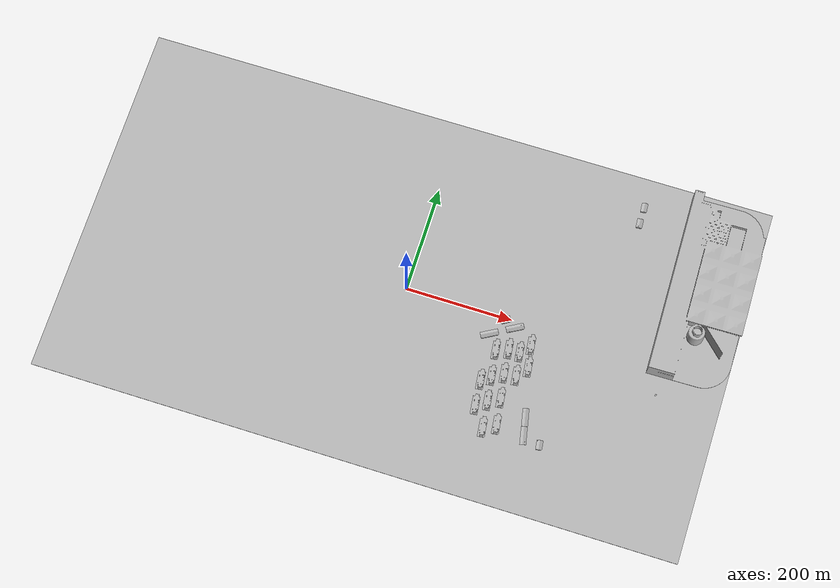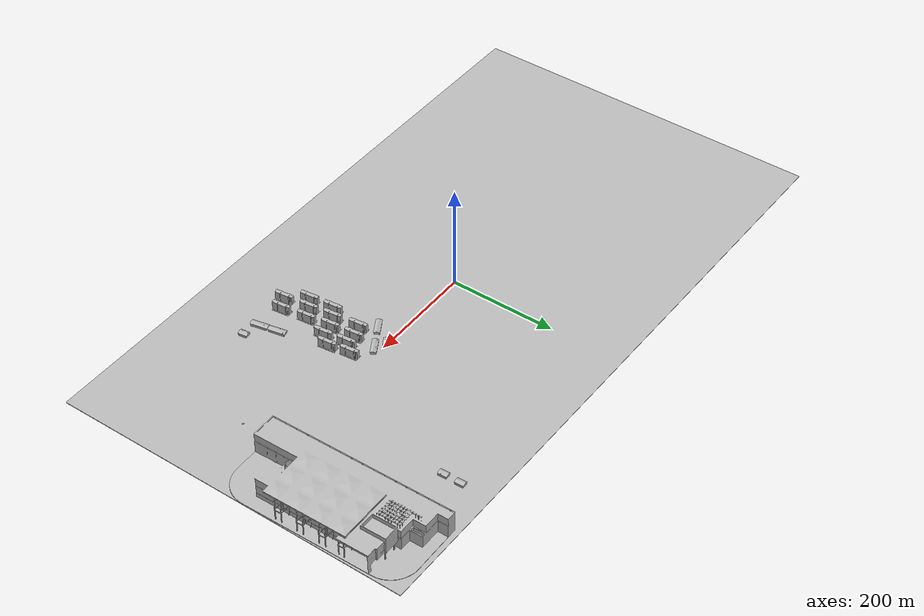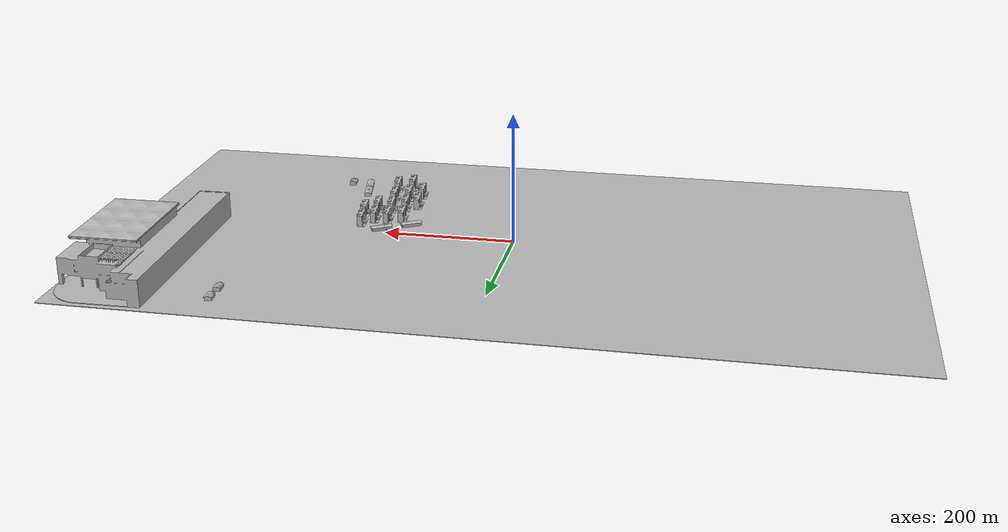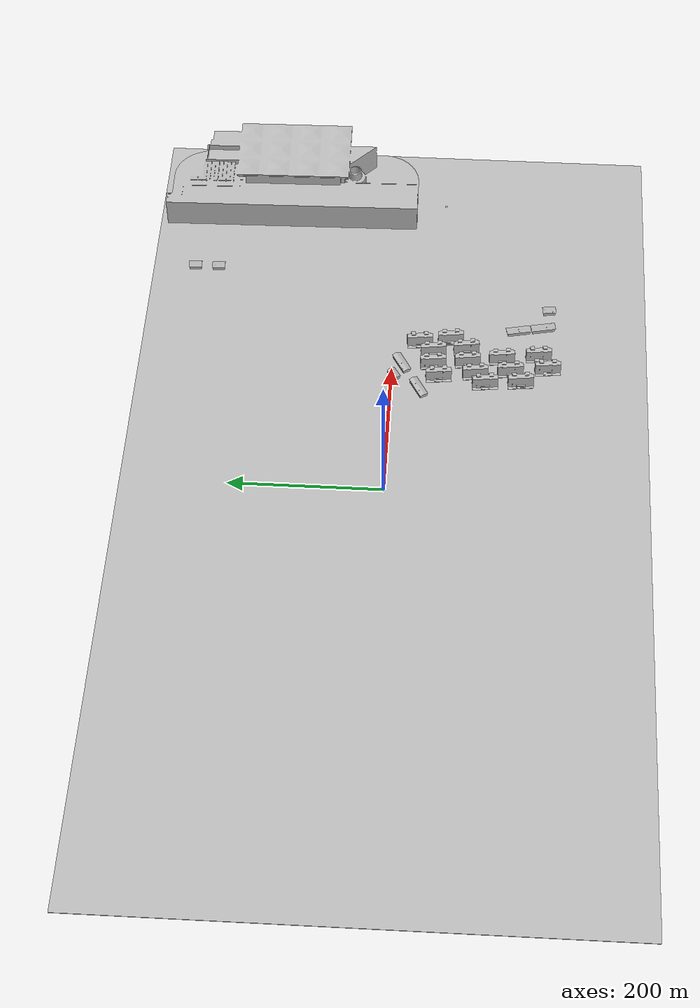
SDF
<sdf version="1.7">
 <world name="default">
  <model name="ground_plane">
   <static>1</static>
   <link name="link">
    <collision name="collision">
     <geometry><mesh><uri>model://ground_plane/scripts/plane.dae</uri><normal>0 0 1</normal></mesh></geometry>
     <surface><friction><ode><mu>100</mu><mu2>50</mu2></ode></friction></surface>
    </collision>
    <visual name="visual">
     <geometry><mesh><uri>model://ground_plane/scripts/plane.dae</uri><normal>0 0 1</normal></mesh></geometry>
     <material>
      <lighting>1</lighting>
      <script><uri>model://ground_plane/scripts/plane.jpg</uri><name>__default__</name></script>
      <shader type="pixel"/>
     </material>
    </visual>
   </link>
  </model>
  <model name="airport">
   <static>1</static>
   <link name="link_0">
    <inertial>
     <mass>1</mass>
     <inertia>
      <ixx>0.166667</ixx>
      <ixy>0</ixy>
      <ixz>0</ixz>
      <iyy>0.166667</iyy>
      <iyz>0</iyz>
      <izz>0.166667</izz>
     </inertia>
    </inertial>
    <pose>4e-06 1e-06 0 0 -0 1.58504</pose>
    <visual name="visual">
     <geometry><mesh><uri>model://airport/scripts/airport.dae</uri><scale>0.6 0.6 0.8</scale></mesh></geometry>
     <material>
      <lighting>1</lighting>
      <script><uri>model://airport/scripts/airporrt.jpg</uri><name>__default__</name></script>
      <shader type="pixel"><normal_map>__default__</normal_map></shader>
     </material>
    </visual>
    <collision name="collision">
     <geometry><mesh><uri>model://airport/scripts/airport.dae</uri><scale>0.6 0.6 0.8</scale></mesh></geometry>
     <surface>
      <friction>
       <ode><mu>1</mu><mu2>1</mu2><fdir1>0 0 0</fdir1><slip1>0</slip1><slip2>0</slip2></ode>
       <torsional>
        <coefficient>1</coefficient>
        <patch_radius>0</patch_radius>
        <surface_radius>0</surface_radius>
        <use_patch_radius>1</use_patch_radius>
        <ode><slip>0</slip></ode>
       </torsional>
      </friction>
      <bounce><restitution_coefficient>0</restitution_coefficient><threshold>1e+06</threshold></bounce>
      <contact>
       <collide_without_contact>0</collide_without_contact>
       <collide_without_contact_bitmask>1</collide_without_contact_bitmask>
       <collide_bitmask>1</collide_bitmask>
       <ode>
        <soft_cfm>0</soft_cfm>
        <soft_erp>0.2</soft_erp>
        <kp>1e+13</kp>
        <kd>1</kd>
        <max_vel>0.01</max_vel>
        <min_depth>0</min_depth>
       </ode>
       <bullet>
        <split_impulse>1</split_impulse>
        <split_impulse_penetration_threshold>-0.01</split_impulse_penetration_threshold>
        <soft_cfm>0</soft_cfm>
        <soft_erp>0.2</soft_erp>
        <kp>1e+13</kp>
        <kd>1</kd>
       </bullet>
      </contact>
     </surface>
    </collision>
   </link>
   <static>0</static>
   <pose>546.583 154.869 1.00781 0 -0 0.00274</pose>
  </model>
  <model name="marker_design2_clone">
   <static>1</static>
   <link name="link">
    <collision name="collision">
     <geometry><box><size>3 3 0.2</size><normal>0 0 0</normal></box></geometry>
     <surface><friction><ode><mu>100</mu><mu2>100</mu2></ode></friction></surface>
    </collision>
    <visual name="visual">
     <cast_shadows>0</cast_shadows>
     <geometry><box><size>3 3 0.2</size><normal>0 0 0</normal></box></geometry>
     <material>
      <script>
       <uri>model://marker_design2/materials/scripts/marker_design2.material</uri>
       <uri>model://marker_design2/materials/textures/h_design.png</uri>
       <name>marker_design2/Image</name>
      </script>
     </material>
    </visual>
   </link>
   <pose>483.211 -61.8978 20.5469 0 -0 0</pose>
  </model>
  <model name="farmhouse1_0_clone">
   <static>1</static>
   <link name="link_0">
    <inertial>
     <mass>1</mass>
     <inertia>
      <ixx>0.166667</ixx>
      <ixy>0</ixy>
      <ixz>0</ixz>
      <iyy>0.166667</iyy>
      <iyz>0</iyz>
      <izz>0.166667</izz>
     </inertia>
    </inertial>
    <pose>-0 -3e-06 0 0 -0 0</pose>
    <visual name="visual">
     <geometry><mesh><uri>model://farmhouse1/scripts/farmhouse.dae</uri><scale>15 8 5</scale></mesh></geometry>
     <material>
      <lighting>1</lighting>
      <script><uri>model://farmhouse1/scripts/farmhouse.jpg</uri><name>__default__</name></script>
      <shader type="pixel"/>
     </material>
    </visual>
    <collision name="collision">
     <geometry><mesh><uri>model://farmhouse1/scripts/farmhouse.dae</uri><scale>15 8 5</scale></mesh></geometry>
     <surface>
      <friction>
       <ode><mu>1</mu><mu2>1</mu2><fdir1>0 0 0</fdir1><slip1>0</slip1><slip2>0</slip2></ode>
       <torsional>
        <coefficient>1</coefficient>
        <patch_radius>0</patch_radius>
        <surface_radius>0</surface_radius>
        <use_patch_radius>1</use_patch_radius>
        <ode><slip>0</slip></ode>
       </torsional>
      </friction>
      <bounce><restitution_coefficient>0</restitution_coefficient><threshold>1e+06</threshold></bounce>
      <contact>
       <collide_without_contact>0</collide_without_contact>
       <collide_without_contact_bitmask>1</collide_without_contact_bitmask>
       <collide_bitmask>1</collide_bitmask>
       <ode>
        <soft_cfm>0</soft_cfm>
        <soft_erp>0.2</soft_erp>
        <kp>1e+13</kp>
        <kd>1</kd>
        <max_vel>0.01</max_vel>
        <min_depth>0</min_depth>
       </ode>
       <bullet>
        <split_impulse>1</split_impulse>
        <split_impulse_penetration_threshold>-0.01</split_impulse_penetration_threshold>
        <soft_cfm>0</soft_cfm>
        <soft_erp>0.2</soft_erp>
        <kp>1e+13</kp>
        <kd>1</kd>
       </bullet>
      </contact>
     </surface>
    </collision>
   </link>
   <static>0</static>
   <pose>167.93 -36.8972 0 0 -0 0.518921</pose>
  </model>
  <model name="farmhouse2_0_clone_clone">
   <static>1</static>
   <link name="link_0">
    <inertial>
     <mass>1</mass>
     <inertia>
      <ixx>0.166667</ixx>
      <ixy>0</ixy>
      <ixz>0</ixz>
      <iyy>0.166667</iyy>
      <iyz>0</iyz>
      <izz>0.166667</izz>
     </inertia>
    </inertial>
    <pose>-0 -3e-06 0 0 -0 0</pose>
    <visual name="visual">
     <geometry><mesh><uri>model://farmhouse2/scripts/farmhouse.dae</uri><scale>8 8 5</scale></mesh></geometry>
     <material>
      <lighting>1</lighting>
      <script><uri>model://farmhouse2/scripts/farmhouse.jpg</uri><name>__default__</name></script>
      <shader type="pixel"/>
     </material>
    </visual>
    <collision name="collision">
     <geometry><mesh><uri>model://farmhouse/scripts/farmhouse.dae</uri><scale>8 8 5</scale></mesh></geometry>
     <surface>
      <friction>
       <ode><mu>1</mu><mu2>1</mu2><fdir1>0 0 0</fdir1><slip1>0</slip1><slip2>0</slip2></ode>
       <torsional>
        <coefficient>1</coefficient>
        <patch_radius>0</patch_radius>
        <surface_radius>0</surface_radius>
        <use_patch_radius>1</use_patch_radius>
        <ode><slip>0</slip></ode>
       </torsional>
      </friction>
      <bounce><restitution_coefficient>0</restitution_coefficient><threshold>1e+06</threshold></bounce>
      <contact>
       <collide_without_contact>0</collide_without_contact>
       <collide_without_contact_bitmask>1</collide_without_contact_bitmask>
       <collide_bitmask>1</collide_bitmask>
       <ode>
        <soft_cfm>0</soft_cfm>
        <soft_erp>0.2</soft_erp>
        <kp>1e+13</kp>
        <kd>1</kd>
        <max_vel>0.01</max_vel>
        <min_depth>0</min_depth>
       </ode>
       <bullet>
        <split_impulse>1</split_impulse>
        <split_impulse_penetration_threshold>-0.01</split_impulse_penetration_threshold>
        <soft_cfm>0</soft_cfm>
        <soft_erp>0.2</soft_erp>
        <kp>1e+13</kp>
        <kd>1</kd>
       </bullet>
      </contact>
     </surface>
    </collision>
   </link>
   <static>0</static>
   <pose>188.854 -3.15333 0 0 -0 0.54863</pose>
  </model>
  <model name="farmhouse1_0_clone_clone">
   <static>1</static>
   <link name="link_0">
    <inertial>
     <mass>1</mass>
     <inertia>
      <ixx>0.166667</ixx>
      <ixy>0</ixy>
      <ixz>0</ixz>
      <iyy>0.166667</iyy>
      <iyz>0</iyz>
      <izz>0.166667</izz>
     </inertia>
    </inertial>
    <pose>-0 -3e-06 0 0 -0 0</pose>
    <visual name="visual">
     <geometry><mesh><uri>model://farmhouse1/scripts/farmhouse.dae</uri><scale>15 8 5</scale></mesh></geometry>
     <material>
      <lighting>1</lighting>
      <script><uri>model://farmhouse1/scripts/farmhouse.jpg</uri><name>__default__</name></script>
      <shader type="pixel"/>
     </material>
    </visual>
    <collision name="collision">
     <geometry><mesh><uri>model://farmhouse1/scripts/farmhouse.dae</uri><scale>15 8 5</scale></mesh></geometry>
     <surface>
      <friction>
       <ode><mu>1</mu><mu2>1</mu2><fdir1>0 0 0</fdir1><slip1>0</slip1><slip2>0</slip2></ode>
       <torsional>
        <coefficient>1</coefficient>
        <patch_radius>0</patch_radius>
        <surface_radius>0</surface_radius>
        <use_patch_radius>1</use_patch_radius>
        <ode><slip>0</slip></ode>
       </torsional>
      </friction>
      <bounce><restitution_coefficient>0</restitution_coefficient><threshold>1e+06</threshold></bounce>
      <contact>
       <collide_without_contact>0</collide_without_contact>
       <collide_without_contact_bitmask>1</collide_without_contact_bitmask>
       <collide_bitmask>1</collide_bitmask>
       <ode>
        <soft_cfm>0</soft_cfm>
        <soft_erp>0.2</soft_erp>
        <kp>1e+13</kp>
        <kd>1</kd>
        <max_vel>0.01</max_vel>
        <min_depth>0</min_depth>
       </ode>
       <bullet>
        <split_impulse>1</split_impulse>
        <split_impulse_penetration_threshold>-0.01</split_impulse_penetration_threshold>
        <soft_cfm>0</soft_cfm>
        <soft_erp>0.2</soft_erp>
        <kp>1e+13</kp>
        <kd>1</kd>
       </bullet>
      </contact>
     </surface>
    </collision>
   </link>
   <static>0</static>
   <pose>209.024 -12.7353 0 0 -0 0.518921</pose>
  </model>
  <model name="apartment7">
   <static>1</static>
   <link name="link_0">
    <inertial>
     <mass>1</mass>
     <inertia>
      <ixx>0.166667</ixx>
      <ixy>0</ixy>
      <ixz>0</ixz>
      <iyy>0.166667</iyy>
      <iyz>0</iyz>
      <izz>0.166667</izz>
     </inertia>
    </inertial>
    <pose>0.000226 2e-06 0 0 -0 0</pose>
    <visual name="visual">
     <geometry>
      <mesh><uri>model://apartment0/scripts/apartment.dae</uri><scale>0.45 0.21 0.11</scale></mesh>
     </geometry>
     <material>
      <lighting>1</lighting>
      <script><uri>model://apartment0/scripts/building.jpg</uri><name>__default__</name></script>
      <shader type="pixel"/>
     </material>
    </visual>
    <collision name="collision">
     <geometry>
      <mesh><uri>model://apartment0/scripts/apartment.dae</uri><scale>0.45 0.21 0.11</scale></mesh>
     </geometry>
     <surface>
      <friction>
       <ode><mu>1</mu><mu2>1</mu2><fdir1>0 0 0</fdir1><slip1>0</slip1><slip2>0</slip2></ode>
       <torsional>
        <coefficient>1</coefficient>
        <patch_radius>0</patch_radius>
        <surface_radius>0</surface_radius>
        <use_patch_radius>1</use_patch_radius>
        <ode><slip>0</slip></ode>
       </torsional>
      </friction>
      <bounce><restitution_coefficient>0</restitution_coefficient><threshold>1e+06</threshold></bounce>
      <contact>
       <collide_without_contact>0</collide_without_contact>
       <collide_without_contact_bitmask>1</collide_without_contact_bitmask>
       <collide_bitmask>1</collide_bitmask>
       <ode>
        <soft_cfm>0</soft_cfm>
        <soft_erp>0.2</soft_erp>
        <kp>1e+13</kp>
        <kd>1</kd>
        <max_vel>0.01</max_vel>
        <min_depth>0</min_depth>
       </ode>
       <bullet>
        <split_impulse>1</split_impulse>
        <split_impulse_penetration_threshold>-0.01</split_impulse_penetration_threshold>
        <soft_cfm>0</soft_cfm>
        <soft_erp>0.2</soft_erp>
        <kp>1e+13</kp>
        <kd>1</kd>
       </bullet>
      </contact>
     </surface>
    </collision>
   </link>
   <static>0</static>
   <pose>210.284 -54.239 0.315608 0 0 -1.46088</pose>
  </model>
  <model name="apartment7_clone">
   <static>1</static>
   <link name="link_0">
    <inertial>
     <mass>1</mass>
     <inertia>
      <ixx>0.166667</ixx>
      <ixy>0</ixy>
      <ixz>0</ixz>
      <iyy>0.166667</iyy>
      <iyz>0</iyz>
      <izz>0.166667</izz>
     </inertia>
    </inertial>
    <pose>0.000226 2e-06 0 0 -0 0</pose>
    <visual name="visual">
     <geometry>
      <mesh><uri>model://apartment0/scripts/apartment.dae</uri><scale>0.45 0.21 0.11</scale></mesh>
     </geometry>
     <material>
      <lighting>1</lighting>
      <script><uri>model://apartment0/scripts/building.jpg</uri><name>__default__</name></script>
      <shader type="pixel"/>
     </material>
    </visual>
    <collision name="collision">
     <geometry>
      <mesh><uri>model://apartment0/scripts/apartment.dae</uri><scale>0.45 0.21 0.11</scale></mesh>
     </geometry>
     <surface>
      <friction>
       <ode><mu>1</mu><mu2>1</mu2><fdir1>0 0 0</fdir1><slip1>0</slip1><slip2>0</slip2></ode>
       <torsional>
        <coefficient>1</coefficient>
        <patch_radius>0</patch_radius>
        <surface_radius>0</surface_radius>
        <use_patch_radius>1</use_patch_radius>
        <ode><slip>0</slip></ode>
       </torsional>
      </friction>
      <bounce><restitution_coefficient>0</restitution_coefficient><threshold>1e+06</threshold></bounce>
      <contact>
       <collide_without_contact>0</collide_without_contact>
       <collide_without_contact_bitmask>1</collide_without_contact_bitmask>
       <collide_bitmask>1</collide_bitmask>
       <ode>
        <soft_cfm>0</soft_cfm>
        <soft_erp>0.2</soft_erp>
        <kp>1e+13</kp>
        <kd>1</kd>
        <max_vel>0.01</max_vel>
        <min_depth>0</min_depth>
       </ode>
       <bullet>
        <split_impulse>1</split_impulse>
        <split_impulse_penetration_threshold>-0.01</split_impulse_penetration_threshold>
        <soft_cfm>0</soft_cfm>
        <soft_erp>0.2</soft_erp>
        <kp>1e+13</kp>
        <kd>1</kd>
       </bullet>
      </contact>
     </surface>
    </collision>
   </link>
   <static>0</static>
   <pose>188.393 -62.1585 0.315608 0 0 -1.46088</pose>
  </model>
  <model name="apartment7_clone_1">
   <static>1</static>
   <link name="link_0">
    <inertial>
     <mass>1</mass>
     <inertia>
      <ixx>0.166667</ixx>
      <ixy>0</ixy>
      <ixz>0</ixz>
      <iyy>0.166667</iyy>
      <iyz>0</iyz>
      <izz>0.166667</izz>
     </inertia>
    </inertial>
    <pose>0.000226 2e-06 0 0 -0 0</pose>
    <visual name="visual">
     <geometry>
      <mesh><uri>model://apartment0/scripts/apartment.dae</uri><scale>0.45 0.21 0.11</scale></mesh>
     </geometry>
     <material>
      <lighting>1</lighting>
      <script><uri>model://apartment0/scripts/building.jpg</uri><name>__default__</name></script>
      <shader type="pixel"/>
     </material>
    </visual>
    <collision name="collision">
     <geometry>
      <mesh><uri>model://apartment0/scripts/apartment.dae</uri><scale>0.45 0.21 0.11</scale></mesh>
     </geometry>
     <surface>
      <friction>
       <ode><mu>1</mu><mu2>1</mu2><fdir1>0 0 0</fdir1><slip1>0</slip1><slip2>0</slip2></ode>
       <torsional>
        <coefficient>1</coefficient>
        <patch_radius>0</patch_radius>
        <surface_radius>0</surface_radius>
        <use_patch_radius>1</use_patch_radius>
        <ode><slip>0</slip></ode>
       </torsional>
      </friction>
      <bounce><restitution_coefficient>0</restitution_coefficient><threshold>1e+06</threshold></bounce>
      <contact>
       <collide_without_contact>0</collide_without_contact>
       <collide_without_contact_bitmask>1</collide_without_contact_bitmask>
       <collide_bitmask>1</collide_bitmask>
       <ode>
        <soft_cfm>0</soft_cfm>
        <soft_erp>0.2</soft_erp>
        <kp>1e+13</kp>
        <kd>1</kd>
        <max_vel>0.01</max_vel>
        <min_depth>0</min_depth>
       </ode>
       <bullet>
        <split_impulse>1</split_impulse>
        <split_impulse_penetration_threshold>-0.01</split_impulse_penetration_threshold>
        <soft_cfm>0</soft_cfm>
        <soft_erp>0.2</soft_erp>
        <kp>1e+13</kp>
        <kd>1</kd>
       </bullet>
      </contact>
     </surface>
    </collision>
   </link>
   <static>0</static>
   <pose>215.191 -99.8292 0.315608 0 0 -1.46088</pose>
  </model>
  <model name="apartment7_clone_2">
   <static>1</static>
   <link name="link_0">
    <inertial>
     <mass>1</mass>
     <inertia>
      <ixx>0.166667</ixx>
      <ixy>0</ixy>
      <ixz>0</ixz>
      <iyy>0.166667</iyy>
      <iyz>0</iyz>
      <izz>0.166667</izz>
     </inertia>
    </inertial>
    <pose>0.000226 2e-06 0 0 -0 0</pose>
    <visual name="visual">
     <geometry>
      <mesh><uri>model://apartment0/scripts/apartment.dae</uri><scale>0.45 0.21 0.11</scale></mesh>
     </geometry>
     <material>
      <lighting>1</lighting>
      <script><uri>model://apartment0/scripts/building.jpg</uri><name>__default__</name></script>
      <shader type="pixel"/>
     </material>
    </visual>
    <collision name="collision">
     <geometry>
      <mesh><uri>model://apartment0/scripts/apartment.dae</uri><scale>0.45 0.21 0.11</scale></mesh>
     </geometry>
     <surface>
      <friction>
       <ode><mu>1</mu><mu2>1</mu2><fdir1>0 0 0</fdir1><slip1>0</slip1><slip2>0</slip2></ode>
       <torsional>
        <coefficient>1</coefficient>
        <patch_radius>0</patch_radius>
        <surface_radius>0</surface_radius>
        <use_patch_radius>1</use_patch_radius>
        <ode><slip>0</slip></ode>
       </torsional>
      </friction>
      <bounce><restitution_coefficient>0</restitution_coefficient><threshold>1e+06</threshold></bounce>
      <contact>
       <collide_without_contact>0</collide_without_contact>
       <collide_without_contact_bitmask>1</collide_without_contact_bitmask>
       <collide_bitmask>1</collide_bitmask>
       <ode>
        <soft_cfm>0</soft_cfm>
        <soft_erp>0.2</soft_erp>
        <kp>1e+13</kp>
        <kd>1</kd>
        <max_vel>0.01</max_vel>
        <min_depth>0</min_depth>
       </ode>
       <bullet>
        <split_impulse>1</split_impulse>
        <split_impulse_penetration_threshold>-0.01</split_impulse_penetration_threshold>
        <soft_cfm>0</soft_cfm>
        <soft_erp>0.2</soft_erp>
        <kp>1e+13</kp>
        <kd>1</kd>
       </bullet>
      </contact>
     </surface>
    </collision>
   </link>
   <static>0</static>
   <pose>195.194 -110.621 0.315608 0 0 -1.46088</pose>
  </model>
  <model name="apartment7_clone_3">
   <static>1</static>
   <link name="link_0">
    <inertial>
     <mass>1</mass>
     <inertia>
      <ixx>0.166667</ixx>
      <ixy>0</ixy>
      <ixz>0</ixz>
      <iyy>0.166667</iyy>
      <iyz>0</iyz>
      <izz>0.166667</izz>
     </inertia>
    </inertial>
    <pose>0.000226 2e-06 0 0 -0 0</pose>
    <visual name="visual">
     <geometry>
      <mesh><uri>model://apartment0/scripts/apartment.dae</uri><scale>0.45 0.21 0.11</scale></mesh>
     </geometry>
     <material>
      <lighting>1</lighting>
      <script><uri>model://apartment0/scripts/building.jpg</uri><name>__default__</name></script>
      <shader type="pixel"/>
     </material>
    </visual>
    <collision name="collision">
     <geometry>
      <mesh><uri>model://apartment0/scripts/apartment.dae</uri><scale>0.45 0.21 0.11</scale></mesh>
     </geometry>
     <surface>
      <friction>
       <ode><mu>1</mu><mu2>1</mu2><fdir1>0 0 0</fdir1><slip1>0</slip1><slip2>0</slip2></ode>
       <torsional>
        <coefficient>1</coefficient>
        <patch_radius>0</patch_radius>
        <surface_radius>0</surface_radius>
        <use_patch_radius>1</use_patch_radius>
        <ode><slip>0</slip></ode>
       </torsional>
      </friction>
      <bounce><restitution_coefficient>0</restitution_coefficient><threshold>1e+06</threshold></bounce>
      <contact>
       <collide_without_contact>0</collide_without_contact>
       <collide_without_contact_bitmask>1</collide_without_contact_bitmask>
       <collide_bitmask>1</collide_bitmask>
       <ode>
        <soft_cfm>0</soft_cfm>
        <soft_erp>0.2</soft_erp>
        <kp>1e+13</kp>
        <kd>1</kd>
        <max_vel>0.01</max_vel>
        <min_depth>0</min_depth>
       </ode>
       <bullet>
        <split_impulse>1</split_impulse>
        <split_impulse_penetration_threshold>-0.01</split_impulse_penetration_threshold>
        <soft_cfm>0</soft_cfm>
        <soft_erp>0.2</soft_erp>
        <kp>1e+13</kp>
        <kd>1</kd>
       </bullet>
      </contact>
     </surface>
    </collision>
   </link>
   <static>0</static>
   <pose>178.659 -123.845 0.315608 0 0 -1.46088</pose>
  </model>
  <model name="apartment7_clone_4">
   <static>1</static>
   <link name="link_0">
    <inertial>
     <mass>1</mass>
     <inertia>
      <ixx>0.166667</ixx>
      <ixy>0</ixy>
      <ixz>0</ixz>
      <iyy>0.166667</iyy>
      <iyz>0</iyz>
      <izz>0.166667</izz>
     </inertia>
    </inertial>
    <pose>0.000226 2e-06 0 0 -0 0</pose>
    <visual name="visual">
     <geometry>
      <mesh><uri>model://apartment0/scripts/apartment.dae</uri><scale>0.45 0.21 0.11</scale></mesh>
     </geometry>
     <material>
      <lighting>1</lighting>
      <script><uri>model://apartment0/scripts/building.jpg</uri><name>__default__</name></script>
      <shader type="pixel"/>
     </material>
    </visual>
    <collision name="collision">
     <geometry>
      <mesh><uri>model://apartment0/scripts/apartment.dae</uri><scale>0.45 0.21 0.11</scale></mesh>
     </geometry>
     <surface>
      <friction>
       <ode><mu>1</mu><mu2>1</mu2><fdir1>0 0 0</fdir1><slip1>0</slip1><slip2>0</slip2></ode>
       <torsional>
        <coefficient>1</coefficient>
        <patch_radius>0</patch_radius>
        <surface_radius>0</surface_radius>
        <use_patch_radius>1</use_patch_radius>
        <ode><slip>0</slip></ode>
       </torsional>
      </friction>
      <bounce><restitution_coefficient>0</restitution_coefficient><threshold>1e+06</threshold></bounce>
      <contact>
       <collide_without_contact>0</collide_without_contact>
       <collide_without_contact_bitmask>1</collide_without_contact_bitmask>
       <collide_bitmask>1</collide_bitmask>
       <ode>
        <soft_cfm>0</soft_cfm>
        <soft_erp>0.2</soft_erp>
        <kp>1e+13</kp>
        <kd>1</kd>
        <max_vel>0.01</max_vel>
        <min_depth>0</min_depth>
       </ode>
       <bullet>
        <split_impulse>1</split_impulse>
        <split_impulse_penetration_threshold>-0.01</split_impulse_penetration_threshold>
        <soft_cfm>0</soft_cfm>
        <soft_erp>0.2</soft_erp>
        <kp>1e+13</kp>
        <kd>1</kd>
       </bullet>
      </contact>
     </surface>
    </collision>
   </link>
   <static>0</static>
   <pose>222.711 -145.294 0.315608 0 0 -1.46088</pose>
  </model>
  <model name="apartment7_clone_5">
   <static>1</static>
   <link name="link_0">
    <inertial>
     <mass>1</mass>
     <inertia>
      <ixx>0.166667</ixx>
      <ixy>0</ixy>
      <ixz>0</ixz>
      <iyy>0.166667</iyy>
      <iyz>0</iyz>
      <izz>0.166667</izz>
     </inertia>
    </inertial>
    <pose>0.000226 2e-06 0 0 -0 0</pose>
    <visual name="visual">
     <geometry>
      <mesh><uri>model://apartment0/scripts/apartment.dae</uri><scale>0.45 0.21 0.11</scale></mesh>
     </geometry>
     <material>
      <lighting>1</lighting>
      <script><uri>model://apartment0/scripts/building.jpg</uri><name>__default__</name></script>
      <shader type="pixel"/>
     </material>
    </visual>
    <collision name="collision">
     <geometry>
      <mesh><uri>model://apartment0/scripts/apartment.dae</uri><scale>0.45 0.21 0.11</scale></mesh>
     </geometry>
     <surface>
      <friction>
       <ode><mu>1</mu><mu2>1</mu2><fdir1>0 0 0</fdir1><slip1>0</slip1><slip2>0</slip2></ode>
       <torsional>
        <coefficient>1</coefficient>
        <patch_radius>0</patch_radius>
        <surface_radius>0</surface_radius>
        <use_patch_radius>1</use_patch_radius>
        <ode><slip>0</slip></ode>
       </torsional>
      </friction>
      <bounce><restitution_coefficient>0</restitution_coefficient><threshold>1e+06</threshold></bounce>
      <contact>
       <collide_without_contact>0</collide_without_contact>
       <collide_without_contact_bitmask>1</collide_without_contact_bitmask>
       <collide_bitmask>1</collide_bitmask>
       <ode>
        <soft_cfm>0</soft_cfm>
        <soft_erp>0.2</soft_erp>
        <kp>1e+13</kp>
        <kd>1</kd>
        <max_vel>0.01</max_vel>
        <min_depth>0</min_depth>
       </ode>
       <bullet>
        <split_impulse>1</split_impulse>
        <split_impulse_penetration_threshold>-0.01</split_impulse_penetration_threshold>
        <soft_cfm>0</soft_cfm>
        <soft_erp>0.2</soft_erp>
        <kp>1e+13</kp>
        <kd>1</kd>
       </bullet>
      </contact>
     </surface>
    </collision>
   </link>
   <static>0</static>
   <pose>201.512 -156.951 0.315608 0 0 -1.46088</pose>
  </model>
  <model name="apartment7_clone_6">
   <static>1</static>
   <link name="link_0">
    <inertial>
     <mass>1</mass>
     <inertia>
      <ixx>0.166667</ixx>
      <ixy>0</ixy>
      <ixz>0</ixz>
      <iyy>0.166667</iyy>
      <iyz>0</iyz>
      <izz>0.166667</izz>
     </inertia>
    </inertial>
    <pose>0.000226 2e-06 0 0 -0 0</pose>
    <visual name="visual">
     <geometry>
      <mesh><uri>model://apartment0/scripts/apartment.dae</uri><scale>0.45 0.21 0.11</scale></mesh>
     </geometry>
     <material>
      <lighting>1</lighting>
      <script><uri>model://apartment0/scripts/building.jpg</uri><name>__default__</name></script>
      <shader type="pixel"/>
     </material>
    </visual>
    <collision name="collision">
     <geometry>
      <mesh><uri>model://apartment0/scripts/apartment.dae</uri><scale>0.45 0.21 0.11</scale></mesh>
     </geometry>
     <surface>
      <friction>
       <ode><mu>1</mu><mu2>1</mu2><fdir1>0 0 0</fdir1><slip1>0</slip1><slip2>0</slip2></ode>
       <torsional>
        <coefficient>1</coefficient>
        <patch_radius>0</patch_radius>
        <surface_radius>0</surface_radius>
        <use_patch_radius>1</use_patch_radius>
        <ode><slip>0</slip></ode>
       </torsional>
      </friction>
      <bounce><restitution_coefficient>0</restitution_coefficient><threshold>1e+06</threshold></bounce>
      <contact>
       <collide_without_contact>0</collide_without_contact>
       <collide_without_contact_bitmask>1</collide_without_contact_bitmask>
       <collide_bitmask>1</collide_bitmask>
       <ode>
        <soft_cfm>0</soft_cfm>
        <soft_erp>0.2</soft_erp>
        <kp>1e+13</kp>
        <kd>1</kd>
        <max_vel>0.01</max_vel>
        <min_depth>0</min_depth>
       </ode>
       <bullet>
        <split_impulse>1</split_impulse>
        <split_impulse_penetration_threshold>-0.01</split_impulse_penetration_threshold>
        <soft_cfm>0</soft_cfm>
        <soft_erp>0.2</soft_erp>
        <kp>1e+13</kp>
        <kd>1</kd>
       </bullet>
      </contact>
     </surface>
    </collision>
   </link>
   <static>0</static>
   <pose>182.818 -170.724 0.315608 0 0 -1.46088</pose>
  </model>
  <model name="apartment7_clone_7">
   <static>1</static>
   <link name="link_0">
    <inertial>
     <mass>1</mass>
     <inertia>
      <ixx>0.166667</ixx>
      <ixy>0</ixy>
      <ixz>0</ixz>
      <iyy>0.166667</iyy>
      <iyz>0</iyz>
      <izz>0.166667</izz>
     </inertia>
    </inertial>
    <pose>0.000226 2e-06 0 0 -0 0</pose>
    <visual name="visual">
     <geometry>
      <mesh><uri>model://apartment0/scripts/apartment.dae</uri><scale>0.45 0.21 0.11</scale></mesh>
     </geometry>
     <material>
      <lighting>1</lighting>
      <script><uri>model://apartment0/scripts/building.jpg</uri><name>__default__</name></script>
      <shader type="pixel"/>
     </material>
    </visual>
    <collision name="collision">
     <geometry>
      <mesh><uri>model://apartment0/scripts/apartment.dae</uri><scale>0.45 0.21 0.11</scale></mesh>
     </geometry>
     <surface>
      <friction>
       <ode><mu>1</mu><mu2>1</mu2><fdir1>0 0 0</fdir1><slip1>0</slip1><slip2>0</slip2></ode>
       <torsional>
        <coefficient>1</coefficient>
        <patch_radius>0</patch_radius>
        <surface_radius>0</surface_radius>
        <use_patch_radius>1</use_patch_radius>
        <ode><slip>0</slip></ode>
       </torsional>
      </friction>
      <bounce><restitution_coefficient>0</restitution_coefficient><threshold>1e+06</threshold></bounce>
      <contact>
       <collide_without_contact>0</collide_without_contact>
       <collide_without_contact_bitmask>1</collide_without_contact_bitmask>
       <collide_bitmask>1</collide_bitmask>
       <ode>
        <soft_cfm>0</soft_cfm>
        <soft_erp>0.2</soft_erp>
        <kp>1e+13</kp>
        <kd>1</kd>
        <max_vel>0.01</max_vel>
        <min_depth>0</min_depth>
       </ode>
       <bullet>
        <split_impulse>1</split_impulse>
        <split_impulse_penetration_threshold>-0.01</split_impulse_penetration_threshold>
        <soft_cfm>0</soft_cfm>
        <soft_erp>0.2</soft_erp>
        <kp>1e+13</kp>
        <kd>1</kd>
       </bullet>
      </contact>
     </surface>
    </collision>
   </link>
   <static>0</static>
   <pose>229.357 -193.926 0.315608 0 0 -1.46088</pose>
  </model>
  <model name="apartment7_clone_8">
   <static>1</static>
   <link name="link_0">
    <inertial>
     <mass>1</mass>
     <inertia>
      <ixx>0.166667</ixx>
      <ixy>0</ixy>
      <ixz>0</ixz>
      <iyy>0.166667</iyy>
      <iyz>0</iyz>
      <izz>0.166667</izz>
     </inertia>
    </inertial>
    <pose>0.000226 2e-06 0 0 -0 0</pose>
    <visual name="visual">
     <geometry>
      <mesh><uri>model://apartment0/scripts/apartment.dae</uri><scale>0.45 0.21 0.11</scale></mesh>
     </geometry>
     <material>
      <lighting>1</lighting>
      <script><uri>model://apartment0/scripts/building.jpg</uri><name>__default__</name></script>
      <shader type="pixel"/>
     </material>
    </visual>
    <collision name="collision">
     <geometry>
      <mesh><uri>model://apartment0/scripts/apartment.dae</uri><scale>0.45 0.21 0.11</scale></mesh>
     </geometry>
     <surface>
      <friction>
       <ode><mu>1</mu><mu2>1</mu2><fdir1>0 0 0</fdir1><slip1>0</slip1><slip2>0</slip2></ode>
       <torsional>
        <coefficient>1</coefficient>
        <patch_radius>0</patch_radius>
        <surface_radius>0</surface_radius>
        <use_patch_radius>1</use_patch_radius>
        <ode><slip>0</slip></ode>
       </torsional>
      </friction>
      <bounce><restitution_coefficient>0</restitution_coefficient><threshold>1e+06</threshold></bounce>
      <contact>
       <collide_without_contact>0</collide_without_contact>
       <collide_without_contact_bitmask>1</collide_without_contact_bitmask>
       <collide_bitmask>1</collide_bitmask>
       <ode>
        <soft_cfm>0</soft_cfm>
        <soft_erp>0.2</soft_erp>
        <kp>1e+13</kp>
        <kd>1</kd>
        <max_vel>0.01</max_vel>
        <min_depth>0</min_depth>
       </ode>
       <bullet>
        <split_impulse>1</split_impulse>
        <split_impulse_penetration_threshold>-0.01</split_impulse_penetration_threshold>
        <soft_cfm>0</soft_cfm>
        <soft_erp>0.2</soft_erp>
        <kp>1e+13</kp>
        <kd>1</kd>
       </bullet>
      </contact>
     </surface>
    </collision>
   </link>
   <static>0</static>
   <pose>207.042 -206.192 0.315608 0 0 -1.46088</pose>
  </model>
  <model name="apartment7_clone_12">
   <static>1</static>
   <link name="link_0">
    <inertial>
     <mass>1</mass>
     <inertia>
      <ixx>0.166667</ixx>
      <ixy>0</ixy>
      <ixz>0</ixz>
      <iyy>0.166667</iyy>
      <iyz>0</iyz>
      <izz>0.166667</izz>
     </inertia>
    </inertial>
    <pose>0.000226 2e-06 0 0 -0 0</pose>
    <visual name="visual">
     <geometry>
      <mesh><uri>model://apartment0/scripts/apartment.dae</uri><scale>0.45 0.21 0.11</scale></mesh>
     </geometry>
     <material>
      <lighting>1</lighting>
      <script><uri>model://apartment0/scripts/building.jpg</uri><name>__default__</name></script>
      <shader type="pixel"/>
     </material>
    </visual>
    <collision name="collision">
     <geometry>
      <mesh><uri>model://apartment0/scripts/apartment.dae</uri><scale>0.45 0.21 0.11</scale></mesh>
     </geometry>
     <surface>
      <friction>
       <ode><mu>1</mu><mu2>1</mu2><fdir1>0 0 0</fdir1><slip1>0</slip1><slip2>0</slip2></ode>
       <torsional>
        <coefficient>1</coefficient>
        <patch_radius>0</patch_radius>
        <surface_radius>0</surface_radius>
        <use_patch_radius>1</use_patch_radius>
        <ode><slip>0</slip></ode>
       </torsional>
      </friction>
      <bounce><restitution_coefficient>0</restitution_coefficient><threshold>1e+06</threshold></bounce>
      <contact>
       <collide_without_contact>0</collide_without_contact>
       <collide_without_contact_bitmask>1</collide_without_contact_bitmask>
       <collide_bitmask>1</collide_bitmask>
       <ode>
        <soft_cfm>0</soft_cfm>
        <soft_erp>0.2</soft_erp>
        <kp>1e+13</kp>
        <kd>1</kd>
        <max_vel>0.01</max_vel>
        <min_depth>0</min_depth>
       </ode>
       <bullet>
        <split_impulse>1</split_impulse>
        <split_impulse_penetration_threshold>-0.01</split_impulse_penetration_threshold>
        <soft_cfm>0</soft_cfm>
        <soft_erp>0.2</soft_erp>
        <kp>1e+13</kp>
        <kd>1</kd>
       </bullet>
      </contact>
     </surface>
    </collision>
   </link>
   <static>0</static>
   <pose>246.59 -35.1192 0.315608 0 0 -1.46088</pose>
  </model>
  <model name="apartment7_clone_13">
   <static>1</static>
   <link name="link_0">
    <inertial>
     <mass>1</mass>
     <inertia>
      <ixx>0.166667</ixx>
      <ixy>0</ixy>
      <ixz>0</ixz>
      <iyy>0.166667</iyy>
      <iyz>0</iyz>
      <izz>0.166667</izz>
     </inertia>
    </inertial>
    <pose>0.000226 2e-06 0 0 -0 0</pose>
    <visual name="visual">
     <geometry>
      <mesh><uri>model://apartment0/scripts/apartment.dae</uri><scale>0.45 0.21 0.11</scale></mesh>
     </geometry>
     <material>
      <lighting>1</lighting>
      <script><uri>model://apartment0/scripts/building.jpg</uri><name>__default__</name></script>
      <shader type="pixel"/>
     </material>
    </visual>
    <collision name="collision">
     <geometry>
      <mesh><uri>model://apartment0/scripts/apartment.dae</uri><scale>0.45 0.21 0.11</scale></mesh>
     </geometry>
     <surface>
      <friction>
       <ode><mu>1</mu><mu2>1</mu2><fdir1>0 0 0</fdir1><slip1>0</slip1><slip2>0</slip2></ode>
       <torsional>
        <coefficient>1</coefficient>
        <patch_radius>0</patch_radius>
        <surface_radius>0</surface_radius>
        <use_patch_radius>1</use_patch_radius>
        <ode><slip>0</slip></ode>
       </torsional>
      </friction>
      <bounce><restitution_coefficient>0</restitution_coefficient><threshold>1e+06</threshold></bounce>
      <contact>
       <collide_without_contact>0</collide_without_contact>
       <collide_without_contact_bitmask>1</collide_without_contact_bitmask>
       <collide_bitmask>1</collide_bitmask>
       <ode>
        <soft_cfm>0</soft_cfm>
        <soft_erp>0.2</soft_erp>
        <kp>1e+13</kp>
        <kd>1</kd>
        <max_vel>0.01</max_vel>
        <min_depth>0</min_depth>
       </ode>
       <bullet>
        <split_impulse>1</split_impulse>
        <split_impulse_penetration_threshold>-0.01</split_impulse_penetration_threshold>
        <soft_cfm>0</soft_cfm>
        <soft_erp>0.2</soft_erp>
        <kp>1e+13</kp>
        <kd>1</kd>
       </bullet>
      </contact>
     </surface>
    </collision>
   </link>
   <static>0</static>
   <pose>230.845 -53.9513 0.315608 0 0 -1.46088</pose>
  </model>
  <model name="apartment7_clone_14">
   <static>1</static>
   <link name="link_0">
    <inertial>
     <mass>1</mass>
     <inertia>
      <ixx>0.166667</ixx>
      <ixy>0</ixy>
      <ixz>0</ixz>
      <iyy>0.166667</iyy>
      <iyz>0</iyz>
      <izz>0.166667</izz>
     </inertia>
    </inertial>
    <pose>0.000226 2e-06 0 0 -0 0</pose>
    <visual name="visual">
     <geometry>
      <mesh><uri>model://apartment0/scripts/apartment.dae</uri><scale>0.45 0.21 0.11</scale></mesh>
     </geometry>
     <material>
      <lighting>1</lighting>
      <script><uri>model://apartment0/scripts/building.jpg</uri><name>__default__</name></script>
      <shader type="pixel"/>
     </material>
    </visual>
    <collision name="collision">
     <geometry>
      <mesh><uri>model://apartment0/scripts/apartment.dae</uri><scale>0.45 0.21 0.11</scale></mesh>
     </geometry>
     <surface>
      <friction>
       <ode><mu>1</mu><mu2>1</mu2><fdir1>0 0 0</fdir1><slip1>0</slip1><slip2>0</slip2></ode>
       <torsional>
        <coefficient>1</coefficient>
        <patch_radius>0</patch_radius>
        <surface_radius>0</surface_radius>
        <use_patch_radius>1</use_patch_radius>
        <ode><slip>0</slip></ode>
       </torsional>
      </friction>
      <bounce><restitution_coefficient>0</restitution_coefficient><threshold>1e+06</threshold></bounce>
      <contact>
       <collide_without_contact>0</collide_without_contact>
       <collide_without_contact_bitmask>1</collide_without_contact_bitmask>
       <collide_bitmask>1</collide_bitmask>
       <ode>
        <soft_cfm>0</soft_cfm>
        <soft_erp>0.2</soft_erp>
        <kp>1e+13</kp>
        <kd>1</kd>
        <max_vel>0.01</max_vel>
        <min_depth>0</min_depth>
       </ode>
       <bullet>
        <split_impulse>1</split_impulse>
        <split_impulse_penetration_threshold>-0.01</split_impulse_penetration_threshold>
        <soft_cfm>0</soft_cfm>
        <soft_erp>0.2</soft_erp>
        <kp>1e+13</kp>
        <kd>1</kd>
       </bullet>
      </contact>
     </surface>
    </collision>
   </link>
   <static>0</static>
   <pose>253.249 -76.2882 0.315608 0 0 -1.46088</pose>
  </model>
  <model name="apartment7_clone_15">
   <static>1</static>
   <link name="link_0">
    <inertial>
     <mass>1</mass>
     <inertia>
      <ixx>0.166667</ixx>
      <ixy>0</ixy>
      <ixz>0</ixz>
      <iyy>0.166667</iyy>
      <iyz>0</iyz>
      <izz>0.166667</izz>
     </inertia>
    </inertial>
    <pose>0.000226 2e-06 0 0 -0 0</pose>
    <visual name="visual">
     <geometry>
      <mesh><uri>model://apartment0/scripts/apartment.dae</uri><scale>0.45 0.21 0.11</scale></mesh>
     </geometry>
     <material>
      <lighting>1</lighting>
      <script><uri>model://apartment0/scripts/building.jpg</uri><name>__default__</name></script>
      <shader type="pixel"/>
     </material>
    </visual>
    <collision name="collision">
     <geometry>
      <mesh><uri>model://apartment0/scripts/apartment.dae</uri><scale>0.45 0.21 0.11</scale></mesh>
     </geometry>
     <surface>
      <friction>
       <ode><mu>1</mu><mu2>1</mu2><fdir1>0 0 0</fdir1><slip1>0</slip1><slip2>0</slip2></ode>
       <torsional>
        <coefficient>1</coefficient>
        <patch_radius>0</patch_radius>
        <surface_radius>0</surface_radius>
        <use_patch_radius>1</use_patch_radius>
        <ode><slip>0</slip></ode>
       </torsional>
      </friction>
      <bounce><restitution_coefficient>0</restitution_coefficient><threshold>1e+06</threshold></bounce>
      <contact>
       <collide_without_contact>0</collide_without_contact>
       <collide_without_contact_bitmask>1</collide_without_contact_bitmask>
       <collide_bitmask>1</collide_bitmask>
       <ode>
        <soft_cfm>0</soft_cfm>
        <soft_erp>0.2</soft_erp>
        <kp>1e+13</kp>
        <kd>1</kd>
        <max_vel>0.01</max_vel>
        <min_depth>0</min_depth>
       </ode>
       <bullet>
        <split_impulse>1</split_impulse>
        <split_impulse_penetration_threshold>-0.01</split_impulse_penetration_threshold>
        <soft_cfm>0</soft_cfm>
        <soft_erp>0.2</soft_erp>
        <kp>1e+13</kp>
        <kd>1</kd>
       </bullet>
      </contact>
     </surface>
    </collision>
   </link>
   <static>0</static>
   <pose>236.93 -97.5929 0.315608 0 0 -1.46088</pose>
  </model>
  <model name="farmhouse1_0_clone_clone_clone">
   <static>1</static>
   <link name="link_0">
    <inertial>
     <mass>1</mass>
     <inertia>
      <ixx>0.166667</ixx>
      <ixy>0</ixy>
      <ixz>0</ixz>
      <iyy>0.166667</iyy>
      <iyz>0</iyz>
      <izz>0.166667</izz>
     </inertia>
    </inertial>
    <pose>-0 -3e-06 0 0 -0 0</pose>
    <visual name="visual">
     <geometry><mesh><uri>model://farmhouse1/scripts/farmhouse.dae</uri><scale>15 8 5</scale></mesh></geometry>
     <material>
      <lighting>1</lighting>
      <script><uri>model://farmhouse1/scripts/farmhouse.jpg</uri><name>__default__</name></script>
      <shader type="pixel"/>
     </material>
    </visual>
    <collision name="collision">
     <geometry><mesh><uri>model://farmhouse1/scripts/farmhouse.dae</uri><scale>15 8 5</scale></mesh></geometry>
     <surface>
      <friction>
       <ode><mu>1</mu><mu2>1</mu2><fdir1>0 0 0</fdir1><slip1>0</slip1><slip2>0</slip2></ode>
       <torsional>
        <coefficient>1</coefficient>
        <patch_radius>0</patch_radius>
        <surface_radius>0</surface_radius>
        <use_patch_radius>1</use_patch_radius>
        <ode><slip>0</slip></ode>
       </torsional>
      </friction>
      <bounce><restitution_coefficient>0</restitution_coefficient><threshold>1e+06</threshold></bounce>
      <contact>
       <collide_without_contact>0</collide_without_contact>
       <collide_without_contact_bitmask>1</collide_without_contact_bitmask>
       <collide_bitmask>1</collide_bitmask>
       <ode>
        <soft_cfm>0</soft_cfm>
        <soft_erp>0.2</soft_erp>
        <kp>1e+13</kp>
        <kd>1</kd>
        <max_vel>0.01</max_vel>
        <min_depth>0</min_depth>
       </ode>
       <bullet>
        <split_impulse>1</split_impulse>
        <split_impulse_penetration_threshold>-0.01</split_impulse_penetration_threshold>
        <soft_cfm>0</soft_cfm>
        <soft_erp>0.2</soft_erp>
        <kp>1e+13</kp>
        <kd>1</kd>
       </bullet>
      </contact>
     </surface>
    </collision>
   </link>
   <static>0</static>
   <pose>280.137 -199.354 0 0 -0 1.77031</pose>
  </model>
  <model name="farmhouse1_0_clone_clone_clone_clone">
   <static>1</static>
   <link name="link_0">
    <inertial>
     <mass>1</mass>
     <inertia>
      <ixx>0.166667</ixx>
      <ixy>0</ixy>
      <ixz>0</ixz>
      <iyy>0.166667</iyy>
      <iyz>0</iyz>
      <izz>0.166667</izz>
     </inertia>
    </inertial>
    <pose>-0 -3e-06 0 0 -0 0</pose>
    <visual name="visual">
     <geometry><mesh><uri>model://farmhouse1/scripts/farmhouse.dae</uri><scale>15 8 5</scale></mesh></geometry>
     <material>
      <lighting>1</lighting>
      <script><uri>model://farmhouse1/scripts/farmhouse.jpg</uri><name>__default__</name></script>
      <shader type="pixel"/>
     </material>
    </visual>
    <collision name="collision">
     <geometry><mesh><uri>model://farmhouse1/scripts/farmhouse.dae</uri><scale>15 8 5</scale></mesh></geometry>
     <surface>
      <friction>
       <ode><mu>1</mu><mu2>1</mu2><fdir1>0 0 0</fdir1><slip1>0</slip1><slip2>0</slip2></ode>
       <torsional>
        <coefficient>1</coefficient>
        <patch_radius>0</patch_radius>
        <surface_radius>0</surface_radius>
        <use_patch_radius>1</use_patch_radius>
        <ode><slip>0</slip></ode>
       </torsional>
      </friction>
      <bounce><restitution_coefficient>0</restitution_coefficient><threshold>1e+06</threshold></bounce>
      <contact>
       <collide_without_contact>0</collide_without_contact>
       <collide_without_contact_bitmask>1</collide_without_contact_bitmask>
       <collide_bitmask>1</collide_bitmask>
       <ode>
        <soft_cfm>0</soft_cfm>
        <soft_erp>0.2</soft_erp>
        <kp>1e+13</kp>
        <kd>1</kd>
        <max_vel>0.01</max_vel>
        <min_depth>0</min_depth>
       </ode>
       <bullet>
        <split_impulse>1</split_impulse>
        <split_impulse_penetration_threshold>-0.01</split_impulse_penetration_threshold>
        <soft_cfm>0</soft_cfm>
        <soft_erp>0.2</soft_erp>
        <kp>1e+13</kp>
        <kd>1</kd>
       </bullet>
      </contact>
     </surface>
    </collision>
   </link>
   <static>0</static>
   <pose>273.712 -166.526 0 0 -0 1.77031</pose>
  </model>
  <model name="farmhouse2_clone_clone_0_clone_0">
   <static>1</static>
   <link name="link_0">
    <inertial>
     <mass>1</mass>
     <inertia>
      <ixx>0.166667</ixx>
      <ixy>0</ixy>
      <ixz>0</ixz>
      <iyy>0.166667</iyy>
      <iyz>0</iyz>
      <izz>0.166667</izz>
     </inertia>
    </inertial>
    <pose>-0 -3e-06 0 0 -0 0</pose>
    <visual name="visual">
     <geometry><mesh><uri>model://farmhouse2/scripts/farmhouse.dae</uri><scale>8 8 5</scale></mesh></geometry>
     <material>
      <lighting>1</lighting>
      <script><uri>model://farmhouse2/scripts/farmhouse.jpg</uri><name>__default__</name></script>
      <shader type="pixel"/>
     </material>
    </visual>
    <collision name="collision">
     <geometry><mesh><uri>model://farmhouse/scripts/farmhouse.dae</uri><scale>8 8 5</scale></mesh></geometry>
     <surface>
      <friction>
       <ode><mu>1</mu><mu2>1</mu2><fdir1>0 0 0</fdir1><slip1>0</slip1><slip2>0</slip2></ode>
       <torsional>
        <coefficient>1</coefficient>
        <patch_radius>0</patch_radius>
        <surface_radius>0</surface_radius>
        <use_patch_radius>1</use_patch_radius>
        <ode><slip>0</slip></ode>
       </torsional>
      </friction>
      <bounce><restitution_coefficient>0</restitution_coefficient><threshold>1e+06</threshold></bounce>
      <contact>
       <collide_without_contact>0</collide_without_contact>
       <collide_without_contact_bitmask>1</collide_without_contact_bitmask>
       <collide_bitmask>1</collide_bitmask>
       <ode>
        <soft_cfm>0</soft_cfm>
        <soft_erp>0.2</soft_erp>
        <kp>1e+13</kp>
        <kd>1</kd>
        <max_vel>0.01</max_vel>
        <min_depth>0</min_depth>
       </ode>
       <bullet>
        <split_impulse>1</split_impulse>
        <split_impulse_penetration_threshold>-0.01</split_impulse_penetration_threshold>
        <soft_cfm>0</soft_cfm>
        <soft_erp>0.2</soft_erp>
        <kp>1e+13</kp>
        <kd>1</kd>
       </bullet>
      </contact>
     </surface>
    </collision>
   </link>
   <static>0</static>
   <pose>370.376 280.009 0 0 0 -1.51184</pose>
  </model>
  <model name="farmhouse2_clone_clone_0_clone_0_clone">
   <static>1</static>
   <link name="link_0">
    <inertial>
     <mass>1</mass>
     <inertia>
      <ixx>0.166667</ixx>
      <ixy>0</ixy>
      <ixz>0</ixz>
      <iyy>0.166667</iyy>
      <iyz>0</iyz>
      <izz>0.166667</izz>
     </inertia>
    </inertial>
    <pose>-0 -3e-06 0 0 -0 0</pose>
    <visual name="visual">
     <geometry><mesh><uri>model://farmhouse2/scripts/farmhouse.dae</uri><scale>8 8 5</scale></mesh></geometry>
     <material>
      <lighting>1</lighting>
      <script><uri>model://farmhouse2/scripts/farmhouse.jpg</uri><name>__default__</name></script>
      <shader type="pixel"/>
     </material>
    </visual>
    <collision name="collision">
     <geometry><mesh><uri>model://farmhouse/scripts/farmhouse.dae</uri><scale>8 8 5</scale></mesh></geometry>
     <surface>
      <friction>
       <ode><mu>1</mu><mu2>1</mu2><fdir1>0 0 0</fdir1><slip1>0</slip1><slip2>0</slip2></ode>
       <torsional>
        <coefficient>1</coefficient>
        <patch_radius>0</patch_radius>
        <surface_radius>0</surface_radius>
        <use_patch_radius>1</use_patch_radius>
        <ode><slip>0</slip></ode>
       </torsional>
      </friction>
      <bounce><restitution_coefficient>0</restitution_coefficient><threshold>1e+06</threshold></bounce>
      <contact>
       <collide_without_contact>0</collide_without_contact>
       <collide_without_contact_bitmask>1</collide_without_contact_bitmask>
       <collide_bitmask>1</collide_bitmask>
       <ode>
        <soft_cfm>0</soft_cfm>
        <soft_erp>0.2</soft_erp>
        <kp>1e+13</kp>
        <kd>1</kd>
        <max_vel>0.01</max_vel>
        <min_depth>0</min_depth>
       </ode>
       <bullet>
        <split_impulse>1</split_impulse>
        <split_impulse_penetration_threshold>-0.01</split_impulse_penetration_threshold>
        <soft_cfm>0</soft_cfm>
        <soft_erp>0.2</soft_erp>
        <kp>1e+13</kp>
        <kd>1</kd>
       </bullet>
      </contact>
     </surface>
    </collision>
   </link>
   <static>0</static>
   <pose>370.443 247.884 0 0 0 -1.51184</pose>
  </model>
  <model name="farmhouse3_clone_2_clone">
   <static>1</static>
   <link name="link_0">
    <inertial>
     <mass>1</mass>
     <inertia>
      <ixx>0.166667</ixx>
      <ixy>0</ixy>
      <ixz>0</ixz>
      <iyy>0.166667</iyy>
      <iyz>0</iyz>
      <izz>0.166667</izz>
     </inertia>
    </inertial>
    <pose>-0 -3e-06 0 0 -0 0</pose>
    <visual name="visual">
     <geometry><mesh><uri>model://farmhouse3/scripts/farmhouse.dae</uri><scale>8 8 5</scale></mesh></geometry>
     <material>
      <lighting>1</lighting>
      <script><uri>model://farmhouse3/scripts/farmhouse.jpg</uri><name>__default__</name></script>
      <shader type="pixel"/>
     </material>
    </visual>
    <collision name="collision">
     <geometry><mesh><uri>model://farmhouse/scripts/farmhouse.dae</uri><scale>8 8 5</scale></mesh></geometry>
     <surface>
      <friction>
       <ode><mu>1</mu><mu2>1</mu2><fdir1>0 0 0</fdir1><slip1>0</slip1><slip2>0</slip2></ode>
       <torsional>
        <coefficient>1</coefficient>
        <patch_radius>0</patch_radius>
        <surface_radius>0</surface_radius>
        <use_patch_radius>1</use_patch_radius>
        <ode><slip>0</slip></ode>
       </torsional>
      </friction>
      <bounce><restitution_coefficient>0</restitution_coefficient><threshold>1e+06</threshold></bounce>
      <contact>
       <collide_without_contact>0</collide_without_contact>
       <collide_without_contact_bitmask>1</collide_without_contact_bitmask>
       <collide_bitmask>1</collide_bitmask>
       <ode>
        <soft_cfm>0</soft_cfm>
        <soft_erp>0.2</soft_erp>
        <kp>1e+13</kp>
        <kd>1</kd>
        <max_vel>0.01</max_vel>
        <min_depth>0</min_depth>
       </ode>
       <bullet>
        <split_impulse>1</split_impulse>
        <split_impulse_penetration_threshold>-0.01</split_impulse_penetration_threshold>
        <soft_cfm>0</soft_cfm>
        <soft_erp>0.2</soft_erp>
        <kp>1e+13</kp>
        <kd>1</kd>
       </bullet>
      </contact>
     </surface>
    </collision>
   </link>
   <static>0</static>
   <pose>311.63 -207.43 0 0 -0 1.68555</pose>
  </model>
 </world>
</sdf>
